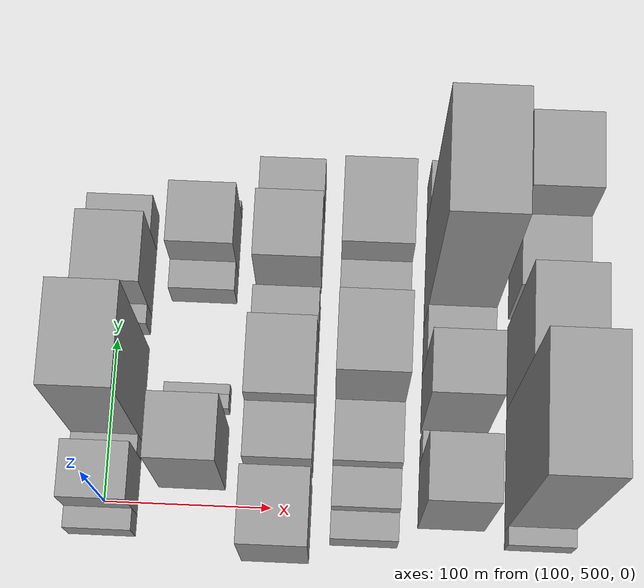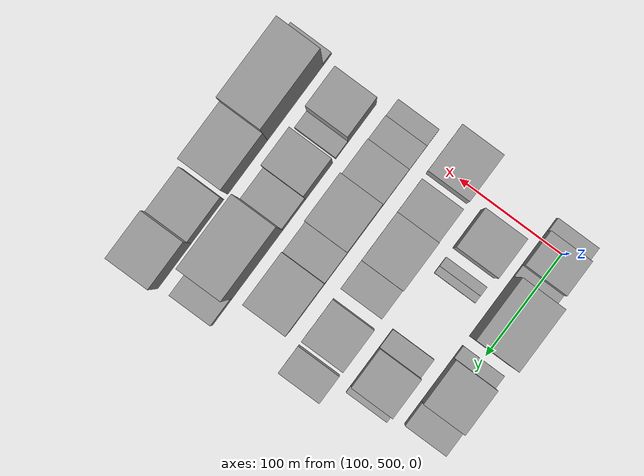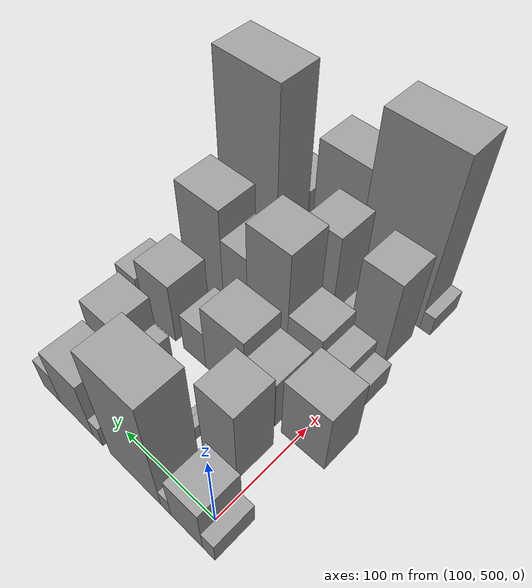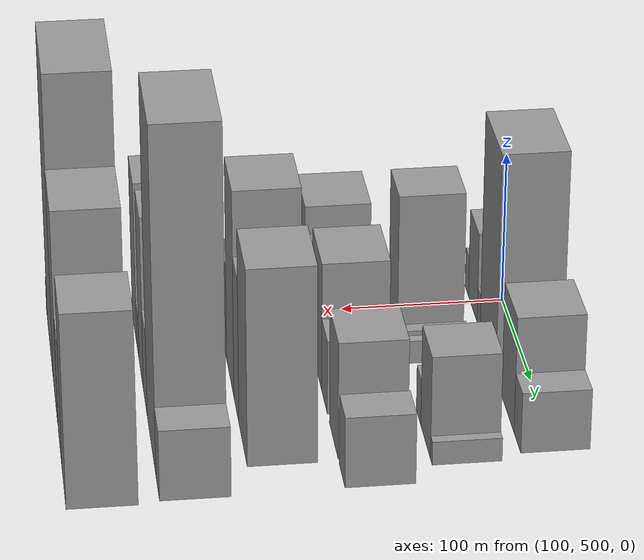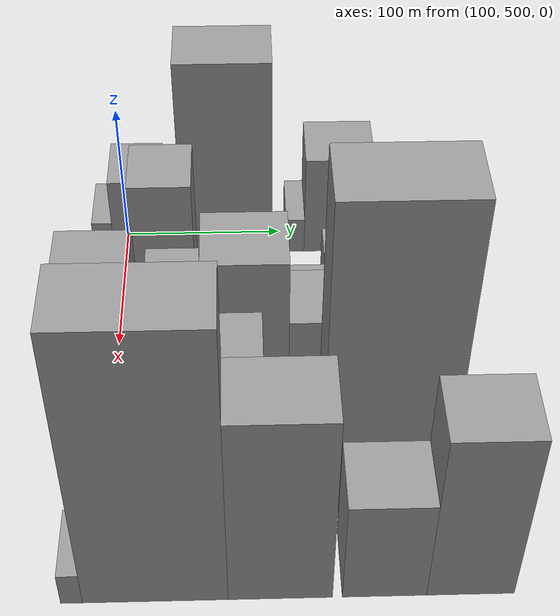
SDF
<sdf version="1.6">
 <world name="default">
  <model name="building_38">
   <static>1</static>
   <pose>100.0000 485.9886 0 0.000000 0.000000 0.000000</pose>
   <link name="link">
    <pose>0 0 13.50 0 0 0</pose>
    <collision name="collision"><geometry><box><size>40.0000 12.8164 27.0000</size></box></geometry></collision>
    <visual name="visual">
     <cast_shadows>0</cast_shadows>
     <geometry><box><size>40.0000 12.8164 27.0000</size></box></geometry>
     <material>
      <script>
       <uri>model://grey_wall/materials/scripts</uri>
       <uri>model://grey_wall/materials/textures</uri>
       <name>vrc/grey_wall</name>
      </script>
     </material>
    </visual>
   </link>
  </model>
  <model name="building_39">
   <static>1</static>
   <pose>100.0000 509.0703 0 0.000000 0.000000 0.000000</pose>
   <link name="link">
    <pose>0 0 30.00 0 0 0</pose>
    <collision name="collision"><geometry><box><size>40.0000 33.3469 60.0000</size></box></geometry></collision>
    <visual name="visual">
     <cast_shadows>0</cast_shadows>
     <geometry><box><size>40.0000 33.3469 60.0000</size></box></geometry>
     <material>
      <script>
       <uri>model://grey_wall/materials/scripts</uri>
       <uri>model://grey_wall/materials/textures</uri>
       <name>vrc/grey_wall</name>
      </script>
     </material>
    </visual>
   </link>
  </model>
  <model name="building_40">
   <static>1</static>
   <pose>100.0000 531.3404 0 0.000000 0.000000 0.000000</pose>
   <link name="link">
    <pose>0 0 12.00 0 0 0</pose>
    <collision name="collision"><geometry><box><size>40.0000 11.1934 24.0000</size></box></geometry></collision>
    <visual name="visual">
     <cast_shadows>0</cast_shadows>
     <geometry><box><size>40.0000 11.1934 24.0000</size></box></geometry>
     <material>
      <script>
       <uri>model://grey_wall/materials/scripts</uri>
       <uri>model://grey_wall/materials/textures</uri>
       <name>vrc/grey_wall</name>
      </script>
     </material>
    </visual>
   </link>
  </model>
  <model name="building_41">
   <static>1</static>
   <pose>100.0000 566.0757 0 0.000000 0.000000 0.000000</pose>
   <link name="link">
    <pose>0 0 73.50 0 0 0</pose>
    <collision name="collision"><geometry><box><size>40.0000 58.2772 147.0000</size></box></geometry></collision>
    <visual name="visual">
     <cast_shadows>0</cast_shadows>
     <geometry><box><size>40.0000 58.2772 147.0000</size></box></geometry>
     <material>
      <script>
       <uri>model://grey_wall/materials/scripts</uri>
       <uri>model://grey_wall/materials/textures</uri>
       <name>vrc/grey_wall</name>
      </script>
     </material>
    </visual>
   </link>
  </model>
  <model name="building_42">
   <static>1</static>
   <pose>100.0000 610.1692 0 0.000000 0.000000 0.000000</pose>
   <link name="link">
    <pose>0 0 13.50 0 0 0</pose>
    <collision name="collision"><geometry><box><size>40.0000 11.9098 27.0000</size></box></geometry></collision>
    <visual name="visual">
     <cast_shadows>0</cast_shadows>
     <geometry><box><size>40.0000 11.9098 27.0000</size></box></geometry>
     <material>
      <script>
       <uri>model://grey_wall/materials/scripts</uri>
       <uri>model://grey_wall/materials/textures</uri>
       <name>vrc/grey_wall</name>
      </script>
     </material>
    </visual>
   </link>
  </model>
  <model name="building_43">
   <static>1</static>
   <pose>100.0000 637.3659 0 0.000000 0.000000 0.000000</pose>
   <link name="link">
    <pose>0 0 37.50 0 0 0</pose>
    <collision name="collision"><geometry><box><size>40.0000 42.4835 75.0000</size></box></geometry></collision>
    <visual name="visual">
     <cast_shadows>0</cast_shadows>
     <geometry><box><size>40.0000 42.4835 75.0000</size></box></geometry>
     <material>
      <script>
       <uri>model://grey_wall/materials/scripts</uri>
       <uri>model://grey_wall/materials/textures</uri>
       <name>vrc/grey_wall</name>
      </script>
     </material>
    </visual>
   </link>
  </model>
  <model name="building_44">
   <static>1</static>
   <pose>100.0000 669.9970 0 0.000000 0.000000 0.000000</pose>
   <link name="link">
    <pose>0 0 19.50 0 0 0</pose>
    <collision name="collision"><geometry><box><size>40.0000 22.7788 39.0000</size></box></geometry></collision>
    <visual name="visual">
     <cast_shadows>0</cast_shadows>
     <geometry><box><size>40.0000 22.7788 39.0000</size></box></geometry>
     <material>
      <script>
       <uri>model://grey_wall/materials/scripts</uri>
       <uri>model://grey_wall/materials/textures</uri>
       <name>vrc/grey_wall</name>
      </script>
     </material>
    </visual>
   </link>
  </model>
  <model name="building_83">
   <static>1</static>
   <pose>152.0000 528.4783 0 0.000000 0.000000 0.000000</pose>
   <link name="link">
    <pose>0 0 49.50 0 0 0</pose>
    <collision name="collision"><geometry><box><size>40.0000 37.2835 99.0000</size></box></geometry></collision>
    <visual name="visual">
     <cast_shadows>0</cast_shadows>
     <geometry><box><size>40.0000 37.2835 99.0000</size></box></geometry>
     <material>
      <script>
       <uri>model://grey_wall/materials/scripts</uri>
       <uri>model://grey_wall/materials/textures</uri>
       <name>vrc/grey_wall</name>
      </script>
     </material>
    </visual>
   </link>
  </model>
  <model name="building_84">
   <static>1</static>
   <pose>152.0000 560.4969 0 0.000000 0.000000 0.000000</pose>
   <link name="link">
    <pose>0 0 9.00 0 0 0</pose>
    <collision name="collision"><geometry><box><size>40.0000 8.7536 18.0000</size></box></geometry></collision>
    <visual name="visual">
     <cast_shadows>0</cast_shadows>
     <geometry><box><size>40.0000 8.7536 18.0000</size></box></geometry>
     <material>
      <script>
       <uri>model://grey_wall/materials/scripts</uri>
       <uri>model://grey_wall/materials/textures</uri>
       <name>vrc/grey_wall</name>
      </script>
     </material>
    </visual>
   </link>
  </model>
  <model name="building_85">
   <static>1</static>
   <pose>152.0000 568.3085 0 0.000000 0.000000 0.000000</pose>
   <link name="link">
    <pose>0 0 7.50 0 0 0</pose>
    <collision name="collision"><geometry><box><size>40.0000 6.8694 15.0000</size></box></geometry></collision>
    <visual name="visual">
     <cast_shadows>0</cast_shadows>
     <geometry><box><size>40.0000 6.8694 15.0000</size></box></geometry>
     <material>
      <script>
       <uri>model://grey_wall/materials/scripts</uri>
       <uri>model://grey_wall/materials/textures</uri>
       <name>vrc/grey_wall</name>
      </script>
     </material>
    </visual>
   </link>
  </model>
  <model name="building_86">
   <static>1</static>
   <pose>152.0000 635.3804 0 0.000000 0.000000 0.000000</pose>
   <link name="link">
    <pose>0 0 15.00 0 0 0</pose>
    <collision name="collision"><geometry><box><size>40.0000 17.7581 30.0000</size></box></geometry></collision>
    <visual name="visual">
     <cast_shadows>0</cast_shadows>
     <geometry><box><size>40.0000 17.7581 30.0000</size></box></geometry>
     <material>
      <script>
       <uri>model://grey_wall/materials/scripts</uri>
       <uri>model://grey_wall/materials/textures</uri>
       <name>vrc/grey_wall</name>
      </script>
     </material>
    </visual>
   </link>
  </model>
  <model name="building_87">
   <static>1</static>
   <pose>152.0000 663.0353 0 0.000000 0.000000 0.000000</pose>
   <link name="link">
    <pose>0 0 33.00 0 0 0</pose>
    <collision name="collision"><geometry><box><size>40.0000 37.5518 66.0000</size></box></geometry></collision>
    <visual name="visual">
     <cast_shadows>0</cast_shadows>
     <geometry><box><size>40.0000 37.5518 66.0000</size></box></geometry>
     <material>
      <script>
       <uri>model://grey_wall/materials/scripts</uri>
       <uri>model://grey_wall/materials/textures</uri>
       <name>vrc/grey_wall</name>
      </script>
     </material>
    </visual>
   </link>
  </model>
  <model name="building_88">
   <static>1</static>
   <pose>152.0000 685.1945 0 0.000000 0.000000 0.000000</pose>
   <link name="link">
    <pose>0 0 7.50 0 0 0</pose>
    <collision name="collision"><geometry><box><size>40.0000 6.7666 15.0000</size></box></geometry></collision>
    <visual name="visual">
     <cast_shadows>0</cast_shadows>
     <geometry><box><size>40.0000 6.7666 15.0000</size></box></geometry>
     <material>
      <script>
       <uri>model://grey_wall/materials/scripts</uri>
       <uri>model://grey_wall/materials/textures</uri>
       <name>vrc/grey_wall</name>
      </script>
     </material>
    </visual>
   </link>
  </model>
  <model name="building_133">
   <static>1</static>
   <pose>204.0000 490.2383 0 0.000000 0.000000 0.000000</pose>
   <link name="link">
    <pose>0 0 39.00 0 0 0</pose>
    <collision name="collision"><geometry><box><size>40.0000 44.5377 78.0000</size></box></geometry></collision>
    <visual name="visual">
     <cast_shadows>0</cast_shadows>
     <geometry><box><size>40.0000 44.5377 78.0000</size></box></geometry>
     <material>
      <script>
       <uri>model://grey_wall/materials/scripts</uri>
       <uri>model://grey_wall/materials/textures</uri>
       <name>vrc/grey_wall</name>
      </script>
     </material>
    </visual>
   </link>
  </model>
  <model name="building_134">
   <static>1</static>
   <pose>204.0000 535.7047 0 0.000000 0.000000 0.000000</pose>
   <link name="link">
    <pose>0 0 31.50 0 0 0</pose>
    <collision name="collision"><geometry><box><size>40.0000 32.3950 63.0000</size></box></geometry></collision>
    <visual name="visual">
     <cast_shadows>0</cast_shadows>
     <geometry><box><size>40.0000 32.3950 63.0000</size></box></geometry>
     <material>
      <script>
       <uri>model://grey_wall/materials/scripts</uri>
       <uri>model://grey_wall/materials/textures</uri>
       <name>vrc/grey_wall</name>
      </script>
     </material>
    </visual>
   </link>
  </model>
  <model name="building_135">
   <static>1</static>
   <pose>204.0000 574.9621 0 0.000000 0.000000 0.000000</pose>
   <link name="link">
    <pose>0 0 42.00 0 0 0</pose>
    <collision name="collision"><geometry><box><size>40.0000 46.1198 84.0000</size></box></geometry></collision>
    <visual name="visual">
     <cast_shadows>0</cast_shadows>
     <geometry><box><size>40.0000 46.1198 84.0000</size></box></geometry>
     <material>
      <script>
       <uri>model://grey_wall/materials/scripts</uri>
       <uri>model://grey_wall/materials/textures</uri>
       <name>vrc/grey_wall</name>
      </script>
     </material>
    </visual>
   </link>
  </model>
  <model name="building_136">
   <static>1</static>
   <pose>204.0000 611.6609 0 0.000000 0.000000 0.000000</pose>
   <link name="link">
    <pose>0 0 24.00 0 0 0</pose>
    <collision name="collision"><geometry><box><size>40.0000 27.2777 48.0000</size></box></geometry></collision>
    <visual name="visual">
     <cast_shadows>0</cast_shadows>
     <geometry><box><size>40.0000 27.2777 48.0000</size></box></geometry>
     <material>
      <script>
       <uri>model://grey_wall/materials/scripts</uri>
       <uri>model://grey_wall/materials/textures</uri>
       <name>vrc/grey_wall</name>
      </script>
     </material>
    </visual>
   </link>
  </model>
  <model name="building_137">
   <static>1</static>
   <pose>204.0000 655.5461 0 0.000000 0.000000 0.000000</pose>
   <link name="link">
    <pose>0 0 37.50 0 0 0</pose>
    <collision name="collision"><geometry><box><size>40.0000 40.4929 75.0000</size></box></geometry></collision>
    <visual name="visual">
     <cast_shadows>0</cast_shadows>
     <geometry><box><size>40.0000 40.4929 75.0000</size></box></geometry>
     <material>
      <script>
       <uri>model://grey_wall/materials/scripts</uri>
       <uri>model://grey_wall/materials/textures</uri>
       <name>vrc/grey_wall</name>
      </script>
     </material>
    </visual>
   </link>
  </model>
  <model name="building_138">
   <static>1</static>
   <pose>204.0000 693.9142 0 0.000000 0.000000 0.000000</pose>
   <link name="link">
    <pose>0 0 22.50 0 0 0</pose>
    <collision name="collision"><geometry><box><size>40.0000 26.2432 45.0000</size></box></geometry></collision>
    <visual name="visual">
     <cast_shadows>0</cast_shadows>
     <geometry><box><size>40.0000 26.2432 45.0000</size></box></geometry>
     <material>
      <script>
       <uri>model://grey_wall/materials/scripts</uri>
       <uri>model://grey_wall/materials/textures</uri>
       <name>vrc/grey_wall</name>
      </script>
     </material>
    </visual>
   </link>
  </model>
  <model name="building_185">
   <static>1</static>
   <pose>256.0000 487.8728 0 0.000000 0.000000 0.000000</pose>
   <link name="link">
    <pose>0 0 15.00 0 0 0</pose>
    <collision name="collision"><geometry><box><size>40.0000 16.6893 30.0000</size></box></geometry></collision>
    <visual name="visual">
     <cast_shadows>0</cast_shadows>
     <geometry><box><size>40.0000 16.6893 30.0000</size></box></geometry>
     <material>
      <script>
       <uri>model://grey_wall/materials/scripts</uri>
       <uri>model://grey_wall/materials/textures</uri>
       <name>vrc/grey_wall</name>
      </script>
     </material>
    </visual>
   </link>
  </model>
  <model name="building_186">
   <static>1</static>
   <pose>256.0000 507.9400 0 0.000000 0.000000 0.000000</pose>
   <link name="link">
    <pose>0 0 22.50 0 0 0</pose>
    <collision name="collision"><geometry><box><size>40.0000 23.4451 45.0000</size></box></geometry></collision>
    <visual name="visual">
     <cast_shadows>0</cast_shadows>
     <geometry><box><size>40.0000 23.4451 45.0000</size></box></geometry>
     <material>
      <script>
       <uri>model://grey_wall/materials/scripts</uri>
       <uri>model://grey_wall/materials/textures</uri>
       <name>vrc/grey_wall</name>
      </script>
     </material>
    </visual>
   </link>
  </model>
  <model name="building_187">
   <static>1</static>
   <pose>256.0000 537.2613 0 0.000000 0.000000 0.000000</pose>
   <link name="link">
    <pose>0 0 31.50 0 0 0</pose>
    <collision name="collision"><geometry><box><size>40.0000 35.1974 63.0000</size></box></geometry></collision>
    <visual name="visual">
     <cast_shadows>0</cast_shadows>
     <geometry><box><size>40.0000 35.1974 63.0000</size></box></geometry>
     <material>
      <script>
       <uri>model://grey_wall/materials/scripts</uri>
       <uri>model://grey_wall/materials/textures</uri>
       <name>vrc/grey_wall</name>
      </script>
     </material>
    </visual>
   </link>
  </model>
  <model name="building_188">
   <static>1</static>
   <pose>256.0000 577.3942 0 0.000000 0.000000 0.000000</pose>
   <link name="link">
    <pose>0 0 67.50 0 0 0</pose>
    <collision name="collision"><geometry><box><size>40.0000 45.0685 135.0000</size></box></geometry></collision>
    <visual name="visual">
     <cast_shadows>0</cast_shadows>
     <geometry><box><size>40.0000 45.0685 135.0000</size></box></geometry>
     <material>
      <script>
       <uri>model://grey_wall/materials/scripts</uri>
       <uri>model://grey_wall/materials/textures</uri>
       <name>vrc/grey_wall</name>
      </script>
     </material>
    </visual>
   </link>
  </model>
  <model name="building_189">
   <static>1</static>
   <pose>256.0000 614.4289 0 0.000000 0.000000 0.000000</pose>
   <link name="link">
    <pose>0 0 46.50 0 0 0</pose>
    <collision name="collision"><geometry><box><size>40.0000 29.0008 93.0000</size></box></geometry></collision>
    <visual name="visual">
     <cast_shadows>0</cast_shadows>
     <geometry><box><size>40.0000 29.0008 93.0000</size></box></geometry>
     <material>
      <script>
       <uri>model://grey_wall/materials/scripts</uri>
       <uri>model://grey_wall/materials/textures</uri>
       <name>vrc/grey_wall</name>
      </script>
     </material>
    </visual>
   </link>
  </model>
  <model name="building_190">
   <static>1</static>
   <pose>256.0000 653.5761 0 0.000000 0.000000 0.000000</pose>
   <link name="link">
    <pose>0 0 63.00 0 0 0</pose>
    <collision name="collision"><geometry><box><size>40.0000 49.2937 126.0000</size></box></geometry></collision>
    <visual name="visual">
     <cast_shadows>0</cast_shadows>
     <geometry><box><size>40.0000 49.2937 126.0000</size></box></geometry>
     <material>
      <script>
       <uri>model://grey_wall/materials/scripts</uri>
       <uri>model://grey_wall/materials/textures</uri>
       <name>vrc/grey_wall</name>
      </script>
     </material>
    </visual>
   </link>
  </model>
  <model name="building_235">
   <static>1</static>
   <pose>308.0000 510.7890 0 0.000000 0.000000 0.000000</pose>
   <link name="link">
    <pose>0 0 54.00 0 0 0</pose>
    <collision name="collision"><geometry><box><size>40.0000 37.7494 108.0000</size></box></geometry></collision>
    <visual name="visual">
     <cast_shadows>0</cast_shadows>
     <geometry><box><size>40.0000 37.7494 108.0000</size></box></geometry>
     <material>
      <script>
       <uri>model://grey_wall/materials/scripts</uri>
       <uri>model://grey_wall/materials/textures</uri>
       <name>vrc/grey_wall</name>
      </script>
     </material>
    </visual>
   </link>
  </model>
  <model name="building_236">
   <static>1</static>
   <pose>308.0000 537.6875 0 0.000000 0.000000 0.000000</pose>
   <link name="link">
    <pose>0 0 15.00 0 0 0</pose>
    <collision name="collision"><geometry><box><size>40.0000 16.0476 30.0000</size></box></geometry></collision>
    <visual name="visual">
     <cast_shadows>0</cast_shadows>
     <geometry><box><size>40.0000 16.0476 30.0000</size></box></geometry>
     <material>
      <script>
       <uri>model://grey_wall/materials/scripts</uri>
       <uri>model://grey_wall/materials/textures</uri>
       <name>vrc/grey_wall</name>
      </script>
     </material>
    </visual>
   </link>
  </model>
  <model name="building_237">
   <static>1</static>
   <pose>308.0000 567.7026 0 0.000000 0.000000 0.000000</pose>
   <link name="link">
    <pose>0 0 57.00 0 0 0</pose>
    <collision name="collision"><geometry><box><size>40.0000 35.9826 114.0000</size></box></geometry></collision>
    <visual name="visual">
     <cast_shadows>0</cast_shadows>
     <geometry><box><size>40.0000 35.9826 114.0000</size></box></geometry>
     <material>
      <script>
       <uri>model://grey_wall/materials/scripts</uri>
       <uri>model://grey_wall/materials/textures</uri>
       <name>vrc/grey_wall</name>
      </script>
     </material>
    </visual>
   </link>
  </model>
  <model name="building_238">
   <static>1</static>
   <pose>308.0000 600.7025 0 0.000000 0.000000 0.000000</pose>
   <link name="link">
    <pose>0 0 27.00 0 0 0</pose>
    <collision name="collision"><geometry><box><size>40.0000 30.0172 54.0000</size></box></geometry></collision>
    <visual name="visual">
     <cast_shadows>0</cast_shadows>
     <geometry><box><size>40.0000 30.0172 54.0000</size></box></geometry>
     <material>
      <script>
       <uri>model://grey_wall/materials/scripts</uri>
       <uri>model://grey_wall/materials/textures</uri>
       <name>vrc/grey_wall</name>
      </script>
     </material>
    </visual>
   </link>
  </model>
  <model name="building_239">
   <static>1</static>
   <pose>308.0000 649.3122 0 0.000000 0.000000 0.000000</pose>
   <link name="link">
    <pose>0 0 109.50 0 0 0</pose>
    <collision name="collision"><geometry><box><size>40.0000 67.2022 219.0000</size></box></geometry></collision>
    <visual name="visual">
     <cast_shadows>0</cast_shadows>
     <geometry><box><size>40.0000 67.2022 219.0000</size></box></geometry>
     <material>
      <script>
       <uri>model://grey_wall/materials/scripts</uri>
       <uri>model://grey_wall/materials/textures</uri>
       <name>vrc/grey_wall</name>
      </script>
     </material>
    </visual>
   </link>
  </model>
  <model name="building_240">
   <static>1</static>
   <pose>308.0000 695.9622 0 0.000000 0.000000 0.000000</pose>
   <link name="link">
    <pose>0 0 22.50 0 0 0</pose>
    <collision name="collision"><geometry><box><size>40.0000 26.0978 45.0000</size></box></geometry></collision>
    <visual name="visual">
     <cast_shadows>0</cast_shadows>
     <geometry><box><size>40.0000 26.0978 45.0000</size></box></geometry>
     <material>
      <script>
       <uri>model://grey_wall/materials/scripts</uri>
       <uri>model://grey_wall/materials/textures</uri>
       <name>vrc/grey_wall</name>
      </script>
     </material>
    </visual>
   </link>
  </model>
  <model name="building_279">
   <static>1</static>
   <pose>360.0000 486.6427 0 0.000000 0.000000 0.000000</pose>
   <link name="link">
    <pose>0 0 12.00 0 0 0</pose>
    <collision name="collision"><geometry><box><size>40.0000 11.0444 24.0000</size></box></geometry></collision>
    <visual name="visual">
     <cast_shadows>0</cast_shadows>
     <geometry><box><size>40.0000 11.0444 24.0000</size></box></geometry>
     <material>
      <script>
       <uri>model://grey_wall/materials/scripts</uri>
       <uri>model://grey_wall/materials/textures</uri>
       <name>vrc/grey_wall</name>
      </script>
     </material>
    </visual>
   </link>
  </model>
  <model name="building_280">
   <static>1</static>
   <pose>360.0000 529.0645 0 0.000000 0.000000 0.000000</pose>
   <link name="link">
    <pose>0 0 99.00 0 0 0</pose>
    <collision name="collision"><geometry><box><size>40.0000 73.7992 198.0000</size></box></geometry></collision>
    <visual name="visual">
     <cast_shadows>0</cast_shadows>
     <geometry><box><size>40.0000 73.7992 198.0000</size></box></geometry>
     <material>
      <script>
       <uri>model://grey_wall/materials/scripts</uri>
       <uri>model://grey_wall/materials/textures</uri>
       <name>vrc/grey_wall</name>
      </script>
     </material>
    </visual>
   </link>
  </model>
  <model name="building_281">
   <static>1</static>
   <pose>360.0000 592.4614 0 0.000000 0.000000 0.000000</pose>
   <link name="link">
    <pose>0 0 69.00 0 0 0</pose>
    <collision name="collision"><geometry><box><size>40.0000 52.9945 138.0000</size></box></geometry></collision>
    <visual name="visual">
     <cast_shadows>0</cast_shadows>
     <geometry><box><size>40.0000 52.9945 138.0000</size></box></geometry>
     <material>
      <script>
       <uri>model://grey_wall/materials/scripts</uri>
       <uri>model://grey_wall/materials/textures</uri>
       <name>vrc/grey_wall</name>
      </script>
     </material>
    </visual>
   </link>
  </model>
  <model name="building_282">
   <static>1</static>
   <pose>360.0000 645.4327 0 0.000000 0.000000 0.000000</pose>
   <link name="link">
    <pose>0 0 37.50 0 0 0</pose>
    <collision name="collision"><geometry><box><size>40.0000 42.9482 75.0000</size></box></geometry></collision>
    <visual name="visual">
     <cast_shadows>0</cast_shadows>
     <geometry><box><size>40.0000 42.9482 75.0000</size></box></geometry>
     <material>
      <script>
       <uri>model://grey_wall/materials/scripts</uri>
       <uri>model://grey_wall/materials/textures</uri>
       <name>vrc/grey_wall</name>
      </script>
     </material>
    </visual>
   </link>
  </model>
  <model name="building_283">
   <static>1</static>
   <pose>360.0000 689.3318 0 0.000000 0.000000 0.000000</pose>
   <link name="link">
    <pose>0 0 61.50 0 0 0</pose>
    <collision name="collision"><geometry><box><size>40.0000 44.8501 123.0000</size></box></geometry></collision>
    <visual name="visual">
     <cast_shadows>0</cast_shadows>
     <geometry><box><size>40.0000 44.8501 123.0000</size></box></geometry>
     <material>
      <script>
       <uri>model://grey_wall/materials/scripts</uri>
       <uri>model://grey_wall/materials/textures</uri>
       <name>vrc/grey_wall</name>
      </script>
     </material>
    </visual>
   </link>
  </model>
 </world>
</sdf>
